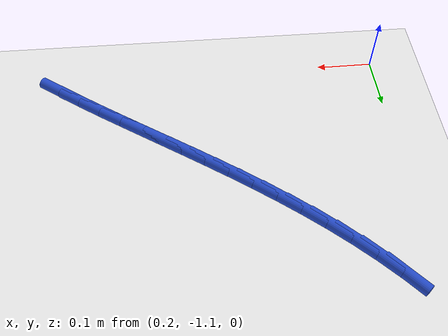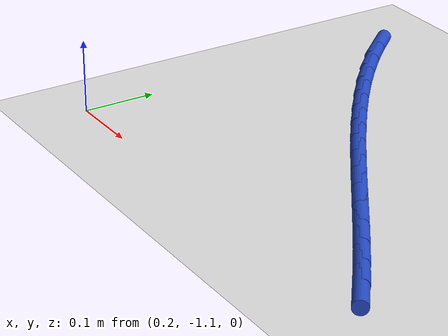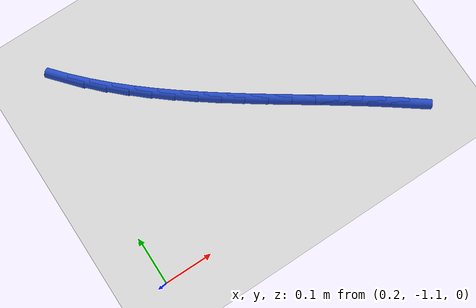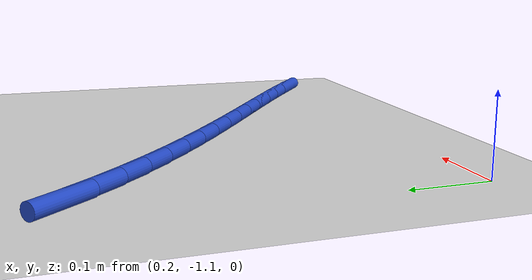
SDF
<sdf version="1.6">
 <world name="default">
  <model name="ground_plane">
   <static>1</static>
   <link name="link">
    <collision name="collision">
     <geometry><plane><normal>0 0 1</normal><size>100 100</size></plane></geometry>
     <surface><friction><ode><mu>100</mu><mu2>50</mu2></ode></friction></surface>
    </collision>
    <visual name="visual">
     <cast_shadows>0</cast_shadows>
     <geometry><plane><normal>0 0 1</normal><size>100 100</size></plane></geometry>
     <material>
      <script><uri>file://media/materials/scripts/gazebo.material</uri><name>Gazebo/WhiteGlow</name></script>
     </material>
    </visual>
   </link>
  </model>
  <model name="line">
   <link name="link_159">
    <pose>0.7829822741750093 -1.069363272355849 0.01 0 1.57 -0.6358323851720055</pose>
    <collision name="collision">
     <geometry><cylinder><radius>0.01</radius><length>0.08</length></cylinder></geometry>
    </collision>
    <visual name="visual">
     <material>
      <script><name>Gazebo/Blue</name><uri>file://media/materials/scripts/gazebo.material</uri></script>
     </material>
     <geometry><cylinder><radius>0.01</radius><length>0.08</length></cylinder></geometry>
    </visual>
   </link>
   <link name="link_160">
    <pose>0.7468560100940564 -1.042698985850106 0.01 0 1.57 -0.6197894597345257</pose>
    <collision name="collision">
     <geometry><cylinder><radius>0.01</radius><length>0.08</length></cylinder></geometry>
    </collision>
    <visual name="visual">
     <material>
      <script><name>Gazebo/Blue</name><uri>file://media/materials/scripts/gazebo.material</uri></script>
     </material>
     <geometry><cylinder><radius>0.01</radius><length>0.08</length></cylinder></geometry>
    </visual>
   </link>
   <link name="link_161">
    <pose>0.7101407569836019 -1.0164993039969732 0.01 0 1.57 -0.6081956958242277</pose>
    <collision name="collision">
     <geometry><cylinder><radius>0.01</radius><length>0.08</length></cylinder></geometry>
    </collision>
    <visual name="visual">
     <material>
      <script><name>Gazebo/Blue</name><uri>file://media/materials/scripts/gazebo.material</uri></script>
     </material>
     <geometry><cylinder><radius>0.01</radius><length>0.08</length></cylinder></geometry>
    </visual>
   </link>
   <link name="link_162">
    <pose>0.6729884686404378 -0.990632522655054 0.01 0 1.57 -0.6009692004004981</pose>
    <collision name="collision">
     <geometry><cylinder><radius>0.01</radius><length>0.08</length></cylinder></geometry>
    </collision>
    <visual name="visual">
     <material>
      <script><name>Gazebo/Blue</name><uri>file://media/materials/scripts/gazebo.material</uri></script>
     </material>
     <geometry><cylinder><radius>0.01</radius><length>0.08</length></cylinder></geometry>
    </visual>
   </link>
   <link name="link_163">
    <pose>0.6355510988613564 -0.9649669376829516 0.01 0 1.57 -0.5980525789801567</pose>
    <collision name="collision">
     <geometry><cylinder><radius>0.01</radius><length>0.08</length></cylinder></geometry>
    </collision>
    <visual name="visual">
     <material>
      <script><name>Gazebo/Blue</name><uri>file://media/materials/scripts/gazebo.material</uri></script>
     </material>
     <geometry><cylinder><radius>0.01</radius><length>0.08</length></cylinder></geometry>
    </visual>
   </link>
   <link name="link_164">
    <pose>0.5979806014431497 -0.9393708449392691 0.01 0 1.57 -0.5994161039097171</pose>
    <collision name="collision">
     <geometry><cylinder><radius>0.01</radius><length>0.08</length></cylinder></geometry>
    </collision>
    <visual name="visual">
     <material>
      <script><name>Gazebo/Blue</name><uri>file://media/materials/scripts/gazebo.material</uri></script>
     </material>
     <geometry><cylinder><radius>0.01</radius><length>0.08</length></cylinder></geometry>
    </visual>
   </link>
   <link name="link_165">
    <pose>0.5604289301826098 -0.9137125402826094 0.01 0 1.57 -0.6050587994217098</pose>
    <collision name="collision">
     <geometry><cylinder><radius>0.01</radius><length>0.08</length></cylinder></geometry>
    </collision>
    <visual name="visual">
     <material>
      <script><name>Gazebo/Blue</name><uri>file://media/materials/scripts/gazebo.material</uri></script>
     </material>
     <geometry><cylinder><radius>0.01</radius><length>0.08</length></cylinder></geometry>
    </visual>
   </link>
   <link name="link_166">
    <pose>0.5230480388765293 -0.8878603195715765 0.01 0 1.57 -0.6150076155140232</pose>
    <collision name="collision">
     <geometry><cylinder><radius>0.01</radius><length>0.08</length></cylinder></geometry>
    </collision>
    <visual name="visual">
     <material>
      <script><name>Gazebo/Blue</name><uri>file://media/materials/scripts/gazebo.material</uri></script>
     </material>
     <geometry><cylinder><radius>0.01</radius><length>0.08</length></cylinder></geometry>
    </visual>
   </link>
   <link name="link_167">
    <pose>0.4859898813216987 -0.8616824786647719 0.01 0 1.57 -0.6293146582499319</pose>
    <collision name="collision">
     <geometry><cylinder><radius>0.01</radius><length>0.08</length></cylinder></geometry>
    </collision>
    <visual name="visual">
     <material>
      <script><name>Gazebo/Blue</name><uri>file://media/materials/scripts/gazebo.material</uri></script>
     </material>
     <geometry><cylinder><radius>0.01</radius><length>0.08</length></cylinder></geometry>
    </visual>
   </link>
   <link name="link_168">
    <pose>0.4494064113149111 -0.8350473134207997 0.01 0 1.57 -0.6480522497805845</pose>
    <collision name="collision">
     <geometry><cylinder><radius>0.01</radius><length>0.08</length></cylinder></geometry>
    </collision>
    <visual name="visual">
     <material>
      <script><name>Gazebo/Blue</name><uri>file://media/materials/scripts/gazebo.material</uri></script>
     </material>
     <geometry><cylinder><radius>0.01</radius><length>0.08</length></cylinder></geometry>
    </visual>
   </link>
   <link name="link_169">
    <pose>0.4134495826529583 -0.807823119698263 0.01 0 1.57 -0.6713054241595947</pose>
    <collision name="collision">
     <geometry><cylinder><radius>0.01</radius><length>0.08</length></cylinder></geometry>
    </collision>
    <visual name="visual">
     <material>
      <script><name>Gazebo/Blue</name><uri>file://media/materials/scripts/gazebo.material</uri></script>
     </material>
     <geometry><cylinder><radius>0.01</radius><length>0.08</length></cylinder></geometry>
    </visual>
   </link>
   <link name="link_170">
    <pose>0.37827134913263233 -0.7798781933557646 0.01 0 1.57 -0.699161353155249</pose>
    <collision name="collision">
     <geometry><cylinder><radius>0.01</radius><length>0.08</length></cylinder></geometry>
    </collision>
    <visual name="visual">
     <material>
      <script><name>Gazebo/Blue</name><uri>file://media/materials/scripts/gazebo.material</uri></script>
     </material>
     <geometry><cylinder><radius>0.01</radius><length>0.08</length></cylinder></geometry>
    </visual>
   </link>
   <link name="link_171">
    <pose>0.34402366455072547 -0.7510808302519081 0.01 0 1.57 -0.7316951873708863</pose>
    <collision name="collision">
     <geometry><cylinder><radius>0.01</radius><length>0.08</length></cylinder></geometry>
    </collision>
    <visual name="visual">
     <material>
      <script><name>Gazebo/Blue</name><uri>file://media/materials/scripts/gazebo.material</uri></script>
     </material>
     <geometry><cylinder><radius>0.01</radius><length>0.08</length></cylinder></geometry>
    </visual>
   </link>
   <link name="link_172">
    <pose>0.3108584827040302 -0.7212993262452968 0.01 0 1.57 -0.7689519631224807</pose>
    <collision name="collision">
     <geometry><cylinder><radius>0.01</radius><length>0.08</length></cylinder></geometry>
    </collision>
    <visual name="visual">
     <material>
      <script><name>Gazebo/Blue</name><uri>file://media/materials/scripts/gazebo.material</uri></script>
     </material>
     <geometry><cylinder><radius>0.01</radius><length>0.08</length></cylinder></geometry>
    </visual>
   </link>
   <link name="link_173">
    <pose>0.2789277573893374 -0.6904019771945329 0.01 0 1.57 -0.8109246536095704</pose>
    <collision name="collision">
     <geometry><cylinder><radius>0.01</radius><length>0.08</length></cylinder></geometry>
    </collision>
    <visual name="visual">
     <material>
      <script><name>Gazebo/Blue</name><uri>file://media/materials/scripts/gazebo.material</uri></script>
     </material>
     <geometry><cylinder><radius>0.01</radius><length>0.08</length></cylinder></geometry>
    </visual>
   </link>
   <link name="link_174">
    <pose>0.24838344240343965 -0.6582570789582196 0.01 0 1.57 -0.8575292156486619</pose>
    <collision name="collision">
     <geometry><cylinder><radius>0.01</radius><length>0.08</length></cylinder></geometry>
    </collision>
    <visual name="visual">
     <material>
      <script><name>Gazebo/Blue</name><uri>file://media/materials/scripts/gazebo.material</uri></script>
     </material>
     <geometry><cylinder><radius>0.01</radius><length>0.08</length></cylinder></geometry>
    </visual>
   </link>
  </model>
 </world>
</sdf>
